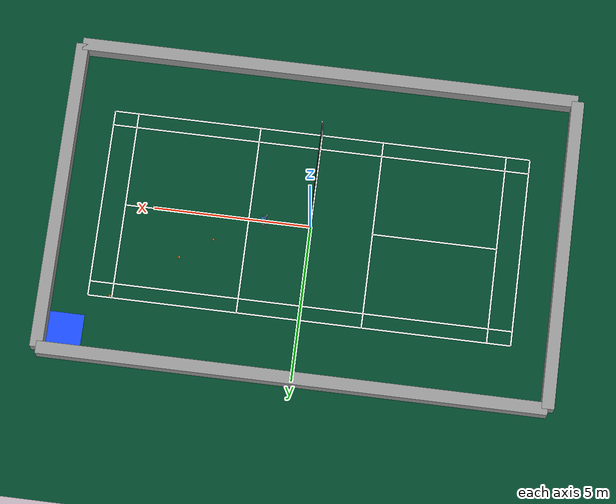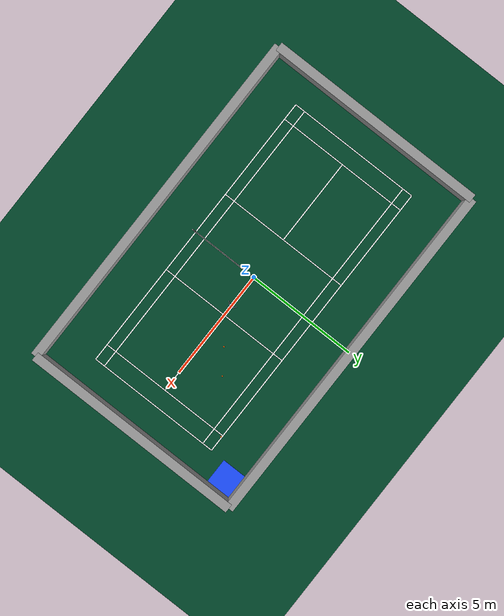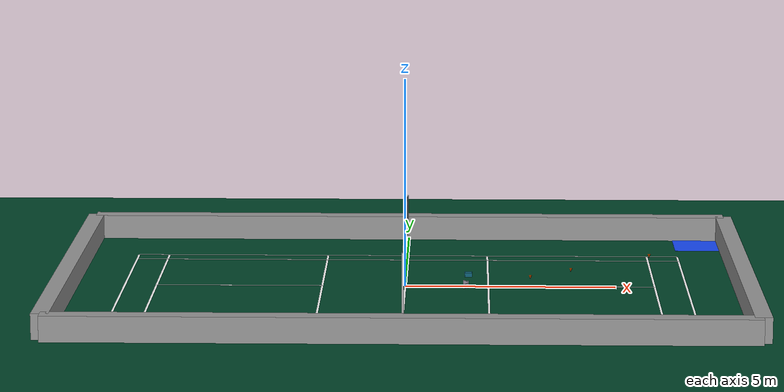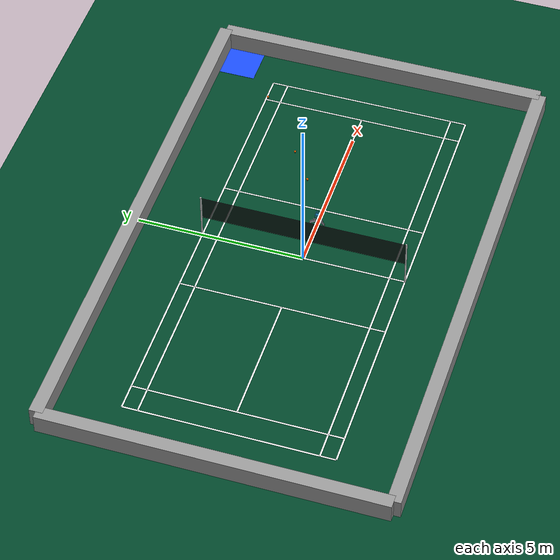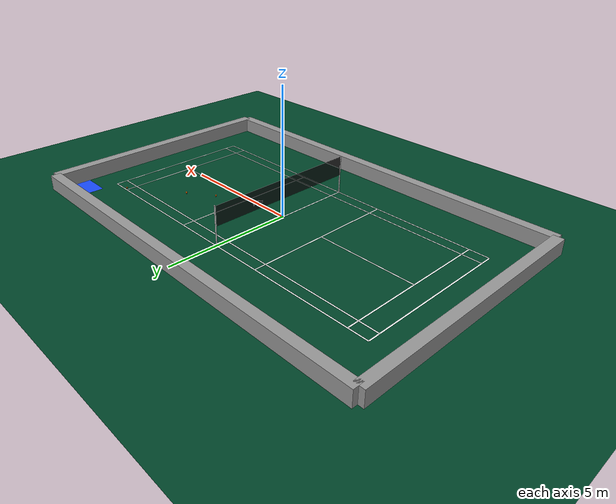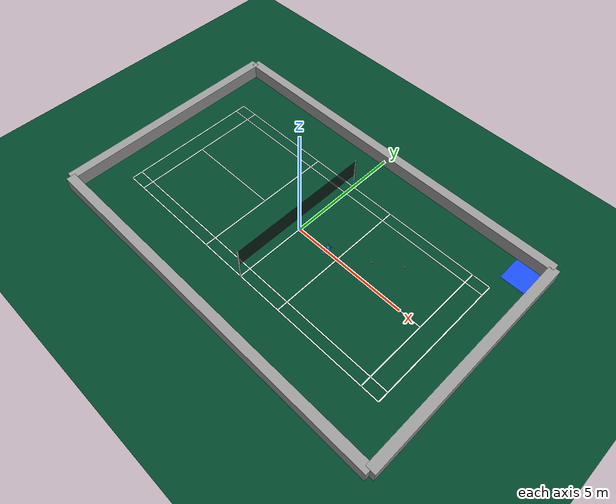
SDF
<?xml version="1.0" ?>
<sdf version="1.9">
    <world name="empty_court">
        <physics name="default_physics" type="ignored">
            <max_step_size>0.004</max_step_size>
            <real_time_factor>1</real_time_factor>
        </physics>

        <model name="ground_plane">
            <static>true</static>
            <link name="link">
                <collision name="collision">
                    <geometry>
                        <plane>
                            <normal>0 0 1</normal>
                            <size>16 10</size>
                        </plane>
                    </geometry>
                </collision>
                <visual name="visual">
                    <geometry>
                        <plane>
                            <normal>0 0 1</normal>
                            <size>16 10</size>
                        </plane>
                    </geometry>
                    <material>
                        <ambient>0.0 0.275 0.165 1</ambient>
                        <diffuse>0.0 0.275 0.165 1</diffuse>
                    </material>
                </visual>
            </link>
        </model>

        <scene>
            <ambient>0.6 0.6 0.6 1</ambient>
            <background>0.2 0.2 0.2 1</background>
            <shadows>false</shadows>
        </scene>

        <!-- Initial camera preset: angled view of the NE quadrant where all
             shuttlecocks and the deposit corner are. Orbit in Gazebo to adjust. -->
        <gui>
            <camera name="user_camera">
                <pose>-2.0 -9.0 12.0 0 -0.78 1.05</pose>
            </camera>
        </gui>

        <light type="directional" name="sun">
            <cast_shadows>false</cast_shadows>
            <pose>0 0 10 0 0 0</pose>
            <diffuse>0.8 0.8 0.8 1</diffuse>
            <specular>0.2 0.2 0.2 1</specular>
            <direction>-0.5 0.1 -1</direction>
        </light>

        <!-- Court line thickness -->
        <!-- thickness = 0.05m, height = 0.02m -->

        <!-- Outer doubles sidelines -->
        <model name="left_doubles_sideline">
            <static>true</static>
            <pose>0 3.05 0.001 0 0 0</pose>
            <link name="link">
                <visual name="visual">
                    <geometry>
                        <box>
                            <size>13.4 0.05 0.001</size>
                        </box>
                    </geometry>
                    <material>
                        <diffuse>1 1 1 1</diffuse>
                    </material>
                </visual>
            </link>
        </model>

        <model name="right_doubles_sideline">
            <static>true</static>
            <pose>0 -3.05 0.001 0 0 0</pose>
            <link name="link">
                <visual name="visual">
                    <geometry>
                        <box>
                            <size>13.4 0.05 0.001</size>
                        </box>
                    </geometry>
                    <material>
                        <diffuse>1 1 1 1</diffuse>
                    </material>
                </visual>
            </link>
        </model>

        <!-- Outer back boundaries -->
        <model name="top_back_boundary">
            <static>true</static>
            <pose>6.7 0 0.001 0 0 0</pose>
            <link name="link">
                <visual name="visual">
                    <geometry>
                        <box>
                            <size>0.05 6.1 0.001</size>
                        </box>
                    </geometry>
                    <material>
                        <diffuse>1 1 1 1</diffuse>
                    </material>
                </visual>
            </link>
        </model>

        <model name="bottom_back_boundary">
            <static>true</static>
            <pose>-6.7 0 0.001 0 0 0</pose>
            <link name="link">
                <visual name="visual">
                    <geometry>
                        <box>
                            <size>0.05 6.1 0.001</size>
                        </box>
                    </geometry>
                    <material>
                        <diffuse>1 1 1 1</diffuse>
                    </material>
                </visual>
            </link>
        </model>

        <!-- Inner singles sidelines -->
        <model name="left_singles_sideline">
            <static>true</static>
            <pose>0 2.59 0.001 0 0 0</pose>
            <link name="link">
                <visual name="visual">
                    <geometry>
                        <box>
                            <size>13.4 0.05 0.001</size>
                        </box>
                    </geometry>
                    <material>
                        <diffuse>1 1 1 1</diffuse>
                    </material>
                </visual>
            </link>
        </model>

        <model name="right_singles_sideline">
            <static>true</static>
            <pose>0 -2.59 0.001 0 0 0</pose>
            <link name="link">
                <visual name="visual">
                    <geometry>
                        <box>
                            <size>13.4 0.05 0.001</size>
                        </box>
                    </geometry>
                    <material>
                        <diffuse>1 1 1 1</diffuse>
                    </material>
                </visual>
            </link>
        </model>

        <!-- Net line -->
        <model name="net_line">
            <static>true</static>
            <pose>0 0 0.001 0 0 0</pose>
            <link name="link">
                <visual name="visual">
                    <geometry>
                        <box>
                            <size>0.05 6.1 0.001</size>
                        </box>
                    </geometry>
                    <material>
                        <diffuse>1 1 1 1</diffuse>
                    </material>
                </visual>
            </link>
        </model>

        <!-- Short service lines -->
        <model name="top_short_service_line">
            <static>true</static>
            <pose>1.98 0 0.001 0 0 0</pose>
            <link name="link">
                <visual name="visual">
                    <geometry>
                        <box>
                            <size>0.05 6.1 0.001</size>
                        </box>
                    </geometry>
                    <material>
                        <diffuse>1 1 1 1</diffuse>
                    </material>
                </visual>
            </link>
        </model>

        <model name="bottom_short_service_line">
            <static>true</static>
            <pose>-1.98 0 0.001 0 0 0</pose>
            <link name="link">
                <visual name="visual">
                    <geometry>
                        <box>
                            <size>0.05 6.1 0.001</size>
                        </box>
                    </geometry>
                    <material>
                        <diffuse>1 1 1 1</diffuse>
                    </material>
                </visual>
            </link>
        </model>

        <!-- Long service lines for doubles -->
        <model name="top_long_service_line">
            <static>true</static>
            <pose>5.94 0 0.001 0 0 0</pose>
            <link name="link">
                <visual name="visual">
                    <geometry>
                        <box>
                            <size>0.05 6.1 0.001</size>
                        </box>
                    </geometry>
                    <material>
                        <diffuse>1 1 1 1</diffuse>
                    </material>
                </visual>
            </link>
        </model>

        <model name="bottom_long_service_line">
            <static>true</static>
            <pose>-5.94 0 0.001 0 0 0</pose>
            <link name="link">
                <visual name="visual">
                    <geometry>
                        <box>
                            <size>0.05 6.1 0.001</size>
                        </box>
                    </geometry>
                    <material>
                        <diffuse>1 1 1 1</diffuse>
                    </material>
                </visual>
            </link>
        </model>

        <!-- Net poles -->
        <model name="net_pole_left">
            <static>true</static>
            <pose>0 3.05 0.775 0 0 0</pose>
            <link name="link">
                <visual name="visual">
                    <geometry>
                        <cylinder>
                            <radius>0.025</radius>
                            <length>1.55</length>
                        </cylinder>
                    </geometry>
                    <material>
                        <diffuse>0.8 0.8 0.8 1</diffuse>
                    </material>
                </visual>
                <collision name="collision">
                    <geometry>
                        <cylinder>
                            <radius>0.025</radius>
                            <length>1.55</length>
                        </cylinder>
                    </geometry>
                </collision>
            </link>
        </model>

        <model name="net_pole_right">
            <static>true</static>
            <pose>0 -3.05 0.775 0 0 0</pose>
            <link name="link">
                <visual name="visual">
                    <geometry>
                        <cylinder>
                            <radius>0.025</radius>
                            <length>1.55</length>
                        </cylinder>
                    </geometry>
                    <material>
                        <diffuse>0.8 0.8 0.8 1</diffuse>
                    </material>
                </visual>
                <collision name="collision">
                    <geometry>
                        <cylinder>
                            <radius>0.025</radius>
                            <length>1.55</length>
                        </cylinder>
                    </geometry>
                </collision>
            </link>
        </model>

        <!-- Net body (flat box approximation, dark mesh colour) -->
        <model name="net_body">
            <static>true</static>
            <pose>0 0 1.144 0 0 0</pose>
            <link name="link">
                <visual name="visual">
                    <geometry>
                        <box>
                            <size>0.02 6.1 0.76</size>
                        </box>
                    </geometry>
                    <material>
                        <ambient>0.1 0.1 0.1 0.8</ambient>
                        <diffuse>0.1 0.1 0.1 0.8</diffuse>
                    </material>
                </visual>
                <collision name="collision">
                    <geometry>
                        <box>
                            <size>0.02 6.1 0.76</size>
                        </box>
                    </geometry>
                </collision>
            </link>
        </model>

        <!-- Center service lines, top and bottom halves -->
        <model name="top_center_service_line">
            <static>true</static>
            <pose>3.96 0 0.001 0 0 0</pose>
            <link name="link">
                <visual name="visual">
                    <geometry>
                        <box>
                            <size>3.96 0.05 0.001</size>
                        </box>
                    </geometry>
                    <pose>0 0 0 0 0 0</pose>
                    <material>
                        <diffuse>1 1 1 1</diffuse>
                    </material>
                </visual>
            </link>
        </model>

        <model name="bottom_center_service_line">
            <static>true</static>
            <pose>-3.96 0 0.001 0 0 0</pose>
            <link name="link">
                <visual name="visual">
                    <geometry>
                        <box>
                            <size>3.96 0.05 0.001</size>
                        </box>
                    </geometry>
                    <pose>0 0 0 0 0 0</pose>
                    <material>
                        <diffuse>1 1 1 1</diffuse>
                    </material>
                </visual>
            </link>
        </model>

        <!-- Boundary walls (keep robot inside the 20x20m ground plane) -->
        <model name="wall_north">
            <static>true</static>
            <pose>8 0 0.3 0 0 0</pose>
            <link name="link">
                <visual name="visual">
                    <geometry><box><size>0.4 10 0.6</size></box></geometry>
                    <material><diffuse>0.6 0.6 0.6 1</diffuse></material>
                </visual>
                <collision name="collision">
                    <geometry><box><size>0.4 10 0.6</size></box></geometry>
                </collision>
            </link>
        </model>

        <model name="wall_south">
            <static>true</static>
            <pose>-8 0 0.3 0 0 0</pose>
            <link name="link">
                <visual name="visual">
                    <geometry><box><size>0.4 10 0.6</size></box></geometry>
                    <material><diffuse>0.6 0.6 0.6 1</diffuse></material>
                </visual>
                <collision name="collision">
                    <geometry><box><size>0.4 10 0.6</size></box></geometry>
                </collision>
            </link>
        </model>

        <model name="wall_east">
            <static>true</static>
            <pose>0 5 0.3 0 0 0</pose>
            <link name="link">
                <visual name="visual">
                    <geometry><box><size>16 0.4 0.6</size></box></geometry>
                    <material><diffuse>0.6 0.6 0.6 1</diffuse></material>
                </visual>
                <collision name="collision">
                    <geometry><box><size>16 0.4 0.6</size></box></geometry>
                </collision>
            </link>
        </model>

        <model name="wall_west">
            <static>true</static>
            <pose>0 -5 0.3 0 0 0</pose>
            <link name="link">
                <visual name="visual">
                    <geometry><box><size>16 0.4 0.6</size></box></geometry>
                    <material><diffuse>0.6 0.6 0.6 1</diffuse></material>
                </visual>
                <collision name="collision">
                    <geometry><box><size>16 0.4 0.6</size></box></geometry>
                </collision>
            </link>
        </model>

        <!-- Shuttlecocks (cork base + feather skirt approximation, 5 scattered) -->
        <model name="shuttlecock_1">
            <static>true</static>
            <pose>3.0 0.8 0 0 0 0</pose>
            <link name="link">
                <visual name="cork">
                    <pose>0 0 0.013 0 0 0</pose>
                    <geometry><sphere><radius>0.013</radius></sphere></geometry>
                    <material><diffuse>0.4 0.2 0.1 1</diffuse></material>
                </visual>
                <visual name="skirt1">
                    <pose>0 0 0.03188 0 0 0</pose>
                    <geometry><cylinder><radius>0.016</radius><length>0.01375</length></cylinder></geometry>
                    <material><diffuse>1.0 0.4 0.0 1</diffuse><emissive>1.0 0.4 0.0 1</emissive></material>
                </visual>
                <visual name="skirt2">
                    <pose>0 0 0.04563 0 0 0</pose>
                    <geometry><cylinder><radius>0.0215</radius><length>0.01375</length></cylinder></geometry>
                    <material><diffuse>1.0 0.4 0.0 1</diffuse><emissive>1.0 0.4 0.0 1</emissive></material>
                </visual>
                <visual name="skirt3">
                    <pose>0 0 0.05938 0 0 0</pose>
                    <geometry><cylinder><radius>0.027</radius><length>0.01375</length></cylinder></geometry>
                    <material><diffuse>1.0 0.4 0.0 1</diffuse><emissive>1.0 0.4 0.0 1</emissive></material>
                </visual>
                <visual name="skirt4">
                    <pose>0 0 0.07313 0 0 0</pose>
                    <geometry><cylinder><radius>0.0325</radius><length>0.01375</length></cylinder></geometry>
                    <material><diffuse>1.0 0.4 0.0 1</diffuse><emissive>1.0 0.4 0.0 1</emissive></material>
                </visual>
            </link>
        </model>
        <model name="shuttlecock_3">
            <static>true</static>
            <pose>6.0 3.0 0 0 0 0</pose>
            <link name="link">
                <visual name="cork">
                    <pose>0 0 0.013 0 0 0</pose>
                    <geometry><sphere><radius>0.013</radius></sphere></geometry>
                    <material><diffuse>0.4 0.2 0.1 1</diffuse></material>
                </visual>
                <visual name="skirt1">
                    <pose>0 0 0.03188 0 0 0</pose>
                    <geometry><cylinder><radius>0.016</radius><length>0.01375</length></cylinder></geometry>
                    <material><diffuse>1.0 0.4 0.0 1</diffuse><emissive>1.0 0.4 0.0 1</emissive></material>
                </visual>
                <visual name="skirt2">
                    <pose>0 0 0.04563 0 0 0</pose>
                    <geometry><cylinder><radius>0.0215</radius><length>0.01375</length></cylinder></geometry>
                    <material><diffuse>1.0 0.4 0.0 1</diffuse><emissive>1.0 0.4 0.0 1</emissive></material>
                </visual>
                <visual name="skirt3">
                    <pose>0 0 0.05938 0 0 0</pose>
                    <geometry><cylinder><radius>0.027</radius><length>0.01375</length></cylinder></geometry>
                    <material><diffuse>1.0 0.4 0.0 1</diffuse><emissive>1.0 0.4 0.0 1</emissive></material>
                </visual>
                <visual name="skirt4">
                    <pose>0 0 0.07313 0 0 0</pose>
                    <geometry><cylinder><radius>0.0325</radius><length>0.01375</length></cylinder></geometry>
                    <material><diffuse>1.0 0.4 0.0 1</diffuse><emissive>1.0 0.4 0.0 1</emissive></material>
                </visual>
            </link>
        </model>
        <model name="shuttlecock_5">
            <static>true</static>
            <pose>4.0 1.5 0 0 0 0</pose>
            <link name="link">
                <visual name="cork">
                    <pose>0 0 0.013 0 0 0</pose>
                    <geometry><sphere><radius>0.013</radius></sphere></geometry>
                    <material><diffuse>0.4 0.2 0.1 1</diffuse></material>
                </visual>
                <visual name="skirt1">
                    <pose>0 0 0.03188 0 0 0</pose>
                    <geometry><cylinder><radius>0.016</radius><length>0.01375</length></cylinder></geometry>
                    <material><diffuse>1.0 0.4 0.0 1</diffuse><emissive>1.0 0.4 0.0 1</emissive></material>
                </visual>
                <visual name="skirt2">
                    <pose>0 0 0.04563 0 0 0</pose>
                    <geometry><cylinder><radius>0.0215</radius><length>0.01375</length></cylinder></geometry>
                    <material><diffuse>1.0 0.4 0.0 1</diffuse><emissive>1.0 0.4 0.0 1</emissive></material>
                </visual>
                <visual name="skirt3">
                    <pose>0 0 0.05938 0 0 0</pose>
                    <geometry><cylinder><radius>0.027</radius><length>0.01375</length></cylinder></geometry>
                    <material><diffuse>1.0 0.4 0.0 1</diffuse><emissive>1.0 0.4 0.0 1</emissive></material>
                </visual>
                <visual name="skirt4">
                    <pose>0 0 0.07313 0 0 0</pose>
                    <geometry><cylinder><radius>0.0325</radius><length>0.01375</length></cylinder></geometry>
                    <material><diffuse>1.0 0.4 0.0 1</diffuse><emissive>1.0 0.4 0.0 1</emissive></material>
                </visual>
            </link>
        </model>

        <!-- Drop-off zones: collected shuttlecocks are deposited at the nearest corner -->
        <model name="dropoff_zone_ne">
            <static>true</static>
            <pose>7.3 4.3 0.002 0 0 0</pose>
            <link name="link">
                <visual name="visual">
                    <geometry><box><size>1.2 1.2 0.004</size></box></geometry>
                    <material>
                        <diffuse>0.1 0.3 1.0 1</diffuse>
                        <emissive>0.1 0.3 1.0 1</emissive>
                    </material>
                </visual>
            </link>
        </model>

        <!-- Passive scoop + hopper bin: repositioned every cycle by
             scoop_follower.py to stay rigidly attached to the robot
             (no joints - tracked via set_pose). -->
        <model name="scoop_assembly">
            <static>true</static>
            <pose>1.5 0 0.05 0 0 0</pose>
            <link name="link">
                <visual name="face">
                    <geometry><box><size>0.02 0.30 0.10</size></box></geometry>
                    <material><ambient>0.6 0.6 0.65 1</ambient><diffuse>0.6 0.6 0.65 1</diffuse></material>
                </visual>
                <collision name="face_collision">
                    <geometry><box><size>0.02 0.30 0.10</size></box></geometry>
                </collision>
                <visual name="wing_left">
                    <pose>-0.06 0.15 0 0 0 0.6</pose>
                    <geometry><box><size>0.02 0.18 0.10</size></box></geometry>
                    <material><ambient>0.6 0.6 0.65 1</ambient><diffuse>0.6 0.6 0.65 1</diffuse></material>
                </visual>
                <collision name="wing_left_collision">
                    <pose>-0.06 0.15 0 0 0 0.6</pose>
                    <geometry><box><size>0.02 0.18 0.10</size></box></geometry>
                </collision>
                <visual name="wing_right">
                    <pose>-0.06 -0.15 0 0 0 -0.6</pose>
                    <geometry><box><size>0.02 0.18 0.10</size></box></geometry>
                    <material><ambient>0.6 0.6 0.65 1</ambient><diffuse>0.6 0.6 0.65 1</diffuse></material>
                </visual>
                <collision name="wing_right_collision">
                    <pose>-0.06 -0.15 0 0 0 -0.6</pose>
                    <geometry><box><size>0.02 0.18 0.10</size></box></geometry>
                </collision>
            </link>
        </model>

        <model name="hopper_bin">
            <static>true</static>
            <pose>1.5 0 0.30 0 0 0</pose>
            <link name="link">
                <visual name="floor">
                    <pose>0 0 -0.04 0 0 0</pose>
                    <geometry><box><size>0.18 0.18 0.01</size></box></geometry>
                    <material><ambient>0.2 0.6 1.0 0.6</ambient><diffuse>0.2 0.6 1.0 0.6</diffuse></material>
                </visual>
                <collision name="floor_collision">
                    <pose>0 0 -0.04 0 0 0</pose>
                    <geometry><box><size>0.18 0.18 0.01</size></box></geometry>
                </collision>
                <visual name="wall_back">
                    <pose>-0.085 0 0 0 0 0</pose>
                    <geometry><box><size>0.01 0.18 0.09</size></box></geometry>
                    <material><ambient>0.2 0.6 1.0 0.4</ambient><diffuse>0.2 0.6 1.0 0.4</diffuse></material>
                </visual>
                <visual name="wall_front">
                    <pose>0.085 0 0 0 0 0</pose>
                    <geometry><box><size>0.01 0.18 0.09</size></box></geometry>
                    <material><ambient>0.2 0.6 1.0 0.4</ambient><diffuse>0.2 0.6 1.0 0.4</diffuse></material>
                </visual>
                <visual name="wall_left">
                    <pose>0 0.085 0 0 0 0</pose>
                    <geometry><box><size>0.18 0.01 0.09</size></box></geometry>
                    <material><ambient>0.2 0.6 1.0 0.4</ambient><diffuse>0.2 0.6 1.0 0.4</diffuse></material>
                </visual>
                <visual name="wall_right">
                    <pose>0 -0.085 0 0 0 0</pose>
                    <geometry><box><size>0.18 0.01 0.09</size></box></geometry>
                    <material><ambient>0.2 0.6 1.0 0.4</ambient><diffuse>0.2 0.6 1.0 0.4</diffuse></material>
                </visual>
            </link>
        </model>

    </world>
</sdf>
